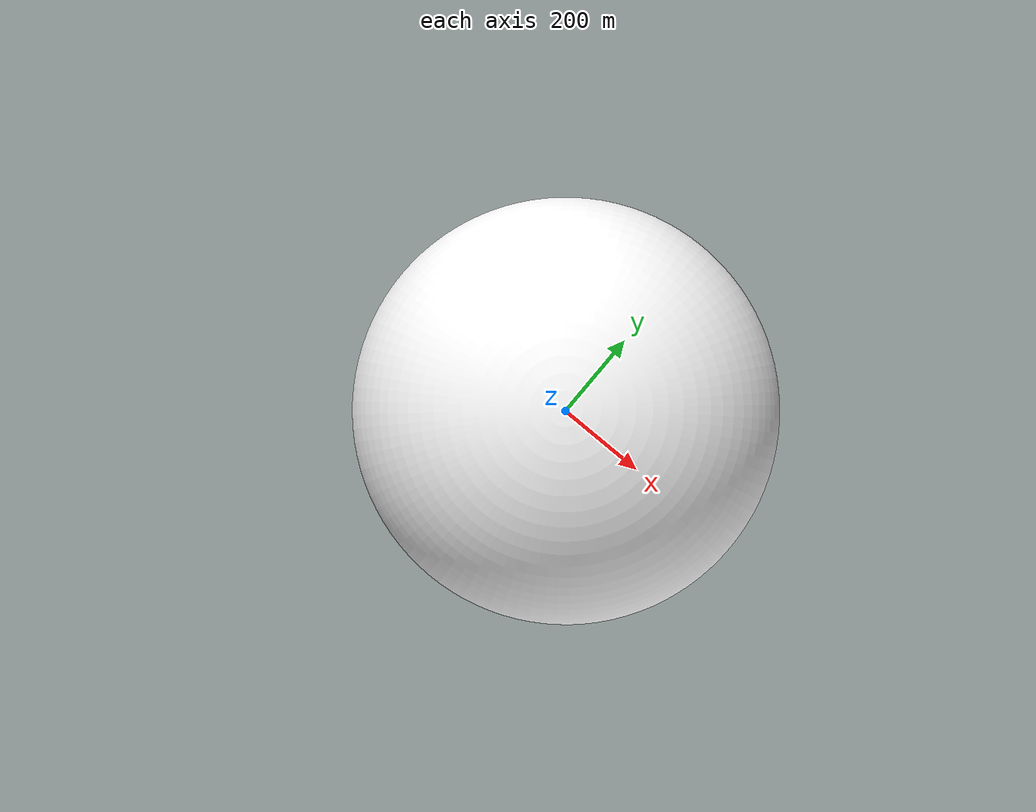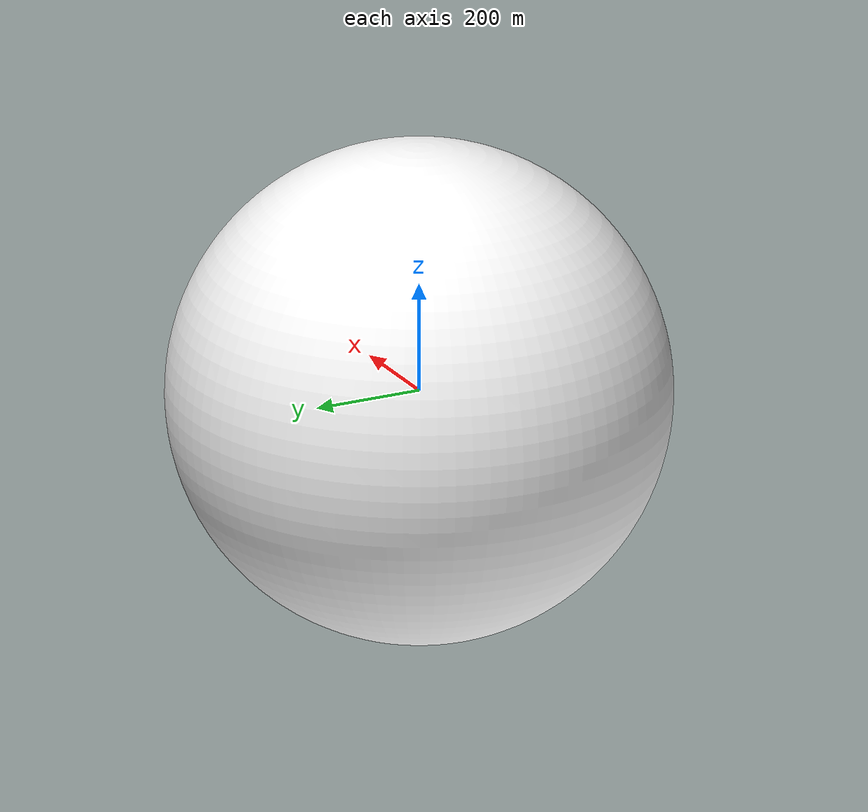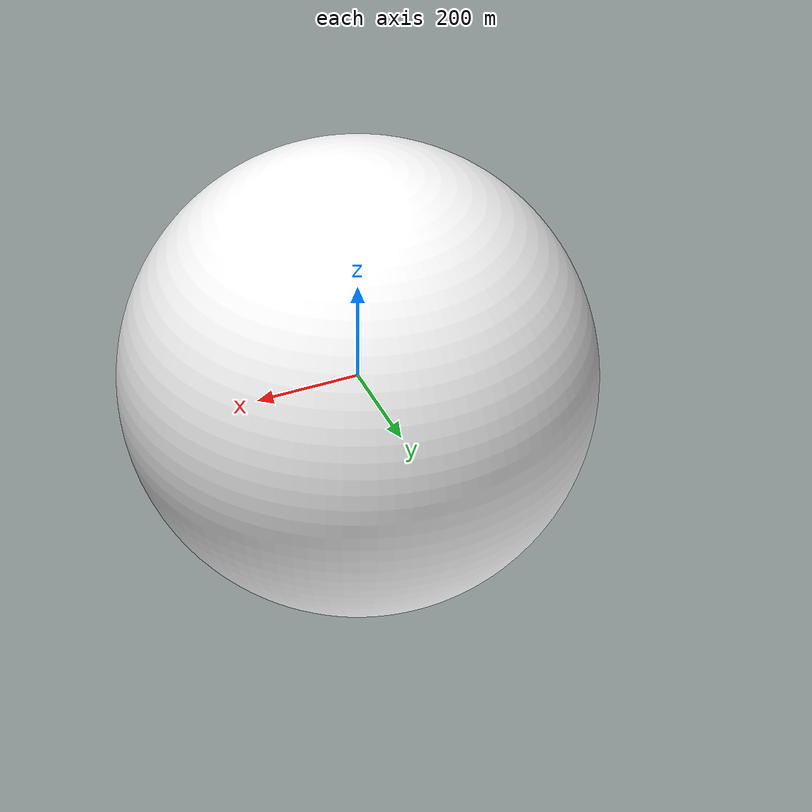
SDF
<?xml version="1.0"?>
<!-- Generated by src/devol_gazebo/scripts/generate_lunar_world.py
     (preset highlands, seed 7).
     Edit the generator and re-run it rather than editing this file. -->
<sdf version="1.9">
  <world name="maze_world">
    <physics name="1ms" type="ignored">
      <max_step_size>0.001</max_step_size>
      <real_time_factor>1.0</real_time_factor>
    </physics>

    <plugin filename="gz-sim-physics-system" name="gz::sim::systems::Physics" />
    <plugin filename="gz-sim-user-commands-system" name="gz::sim::systems::UserCommands" />
    <plugin filename="gz-sim-scene-broadcaster-system" name="gz::sim::systems::SceneBroadcaster" />
    <plugin filename="gz-sim-sensors-system" name="gz::sim::systems::Sensors">
      <render_engine>ogre2</render_engine>
    </plugin>

    <!-- Lunar surface gravity -->
    <gravity>0 0 -1.62</gravity>

    <scene>
      <ambient>0.06 0.06 0.06 1</ambient>
      <background>0 0 0 1</background>
      <shadows>true</shadows>
      <grid>false</grid>
    </scene>

    <!-- Sun 20.0 deg up, azimuth 135.0 deg from +x. -->
    <light type="directional" name="sun">
      <cast_shadows>true</cast_shadows>
      <pose>0 0 50 0 0 0</pose>
      <diffuse>1.0 0.98 0.95 1</diffuse>
      <specular>0.1 0.1 0.1 1</specular>
      <intensity>1.4</intensity>
      <direction>0.6645 -0.6645 -0.3420</direction>
    </light>

    <model name="lunar_terrain">
      <static>true</static>
      <link name="terrain_link">
        <collision name="terrain_collision">
          <geometry><mesh><uri>meshes/terrain.obj</uri></mesh></geometry>
          <surface><friction><ode><mu>0.7</mu><mu2>0.7</mu2></ode></friction></surface>
        </collision>
        <visual name="terrain_visual">
          <geometry><mesh><uri>meshes/terrain.obj</uri></mesh></geometry>
        </visual>
        <collision name="rocks_collision">
          <geometry><mesh><uri>meshes/rocks.obj</uri></mesh></geometry>
          <surface><friction><ode><mu>0.7</mu><mu2>0.7</mu2></ode></friction></surface>
        </collision>
        <visual name="rocks_visual">
          <geometry><mesh><uri>meshes/rocks.obj</uri></mesh></geometry>
        </visual>
      </link>
    </model>

    <!-- Unlit starfield 450 m away: past every sensor's range, visual only. -->
    <model name="star_dome">
      <static>true</static>
      <link name="dome_link">
        <visual name="stars">
          <cast_shadows>false</cast_shadows>
          <geometry><mesh><uri>sky/star_dome.obj</uri></mesh></geometry>
          <material>
            <lighting>false</lighting>
            <ambient>1 1 1 1</ambient>
            <diffuse>1 1 1 1</diffuse>
            <pbr><metal><albedo_map>sky/stars.png</albedo_map></metal></pbr>
          </material>
        </visual>
      </link>
    </model>
  </world>
</sdf>
